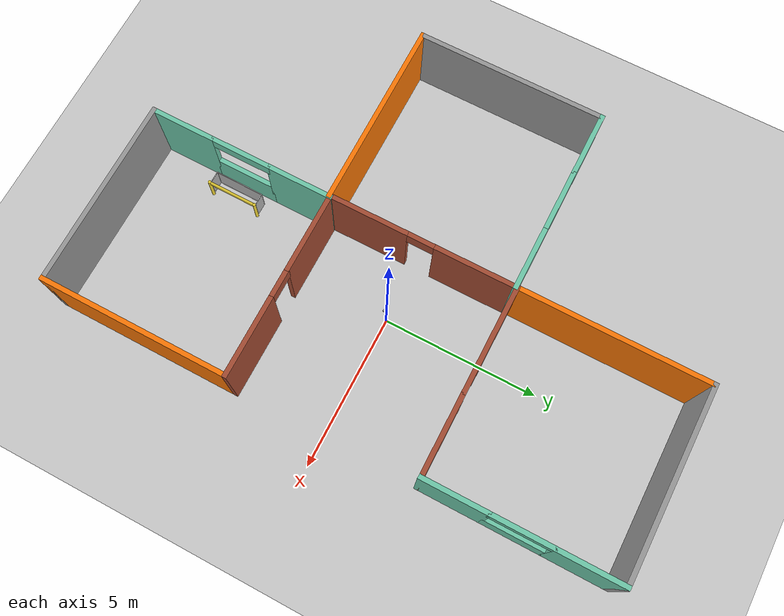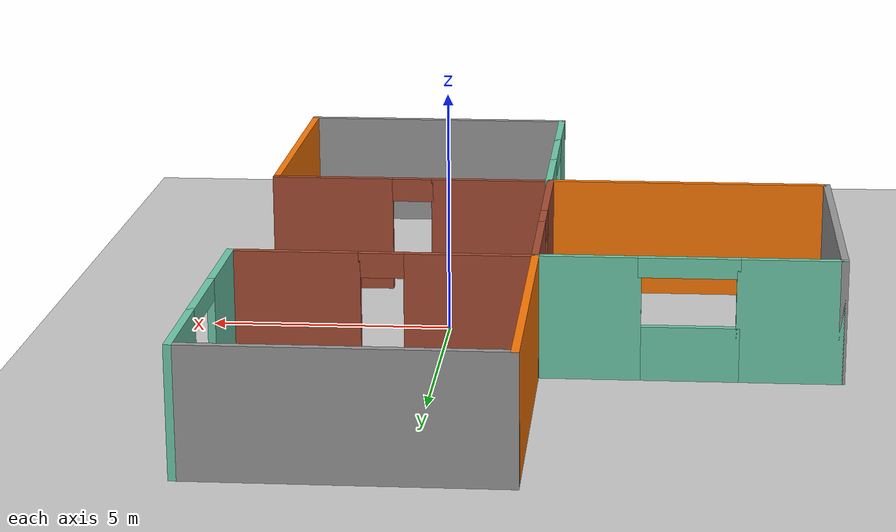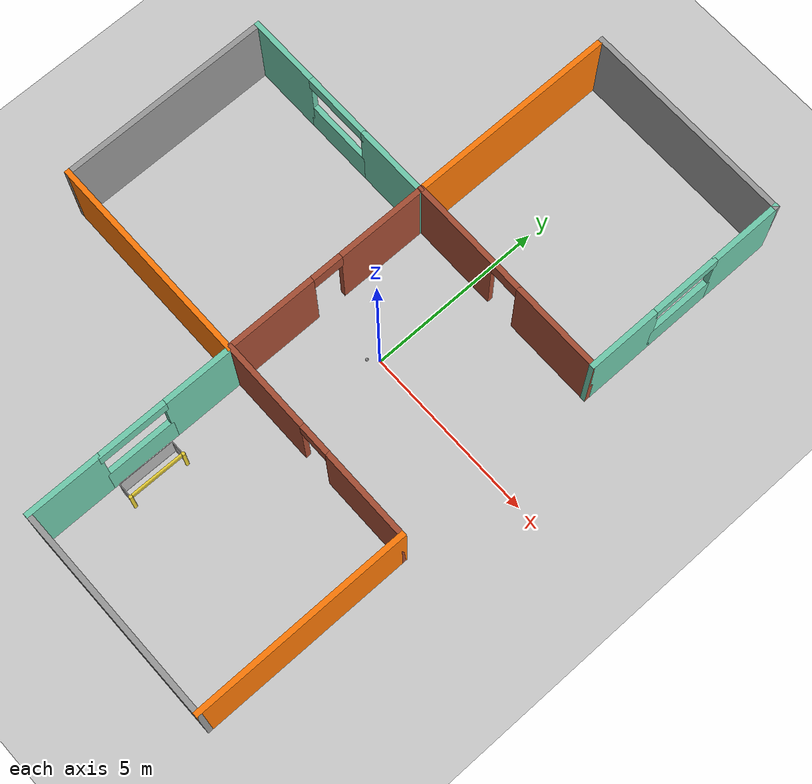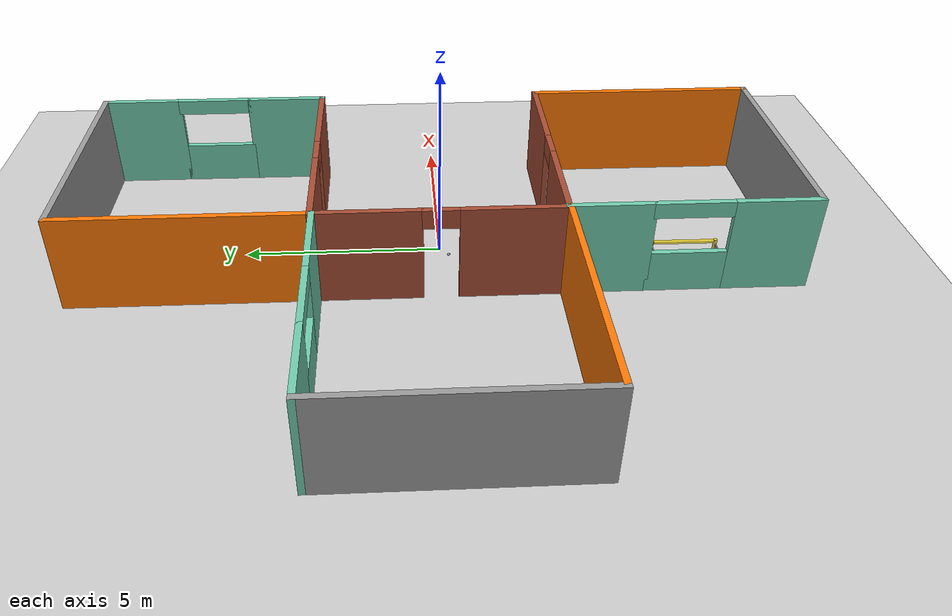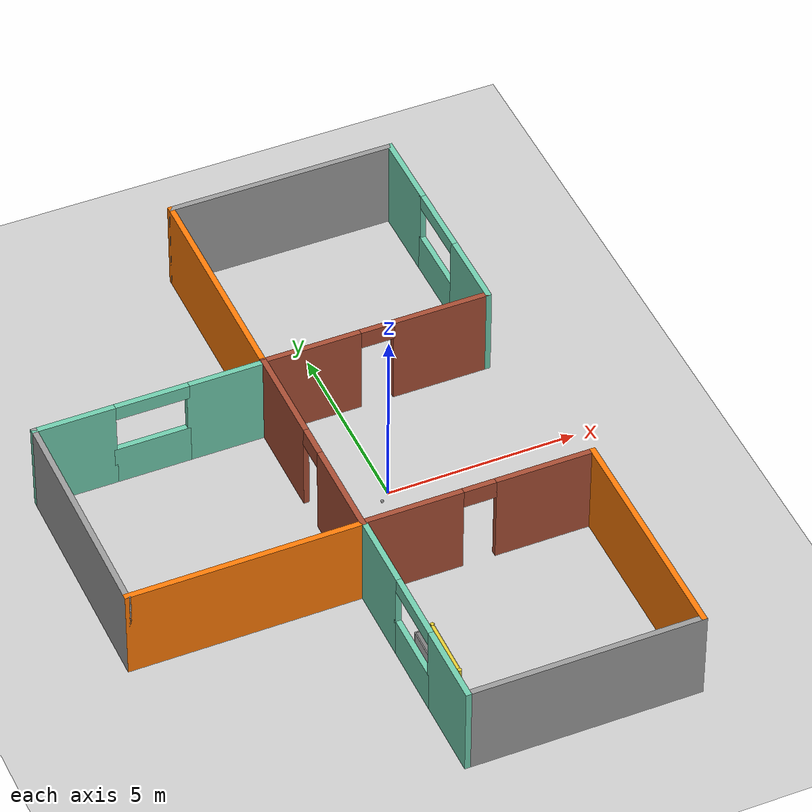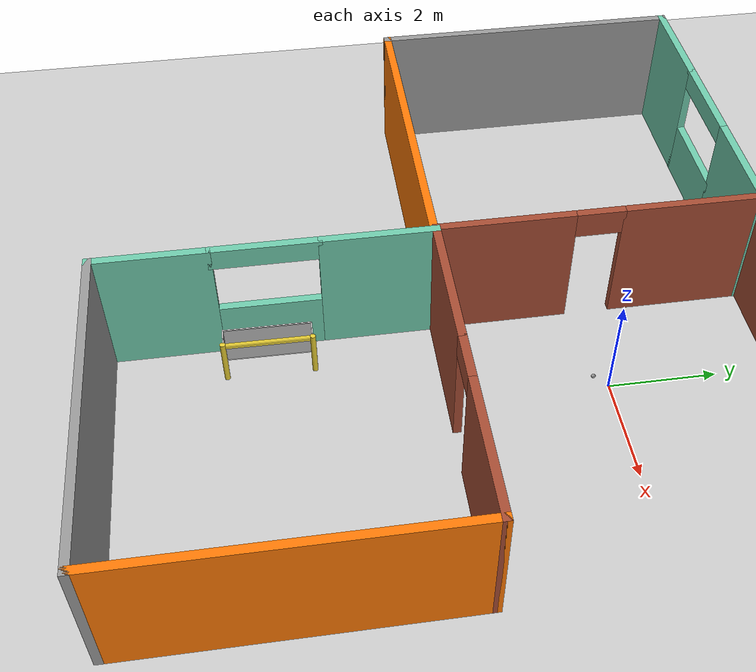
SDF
<sdf version="1.6">
 <world name="default">
  <model name="ground_plane">
   <static>1</static>
   <link name="link">
    <collision name="collision">
     <geometry><plane><normal>0 0 1</normal><size>100 100</size></plane></geometry>
     <surface><friction><ode><mu>100</mu><mu2>50</mu2></ode></friction></surface>
    </collision>
    <visual name="visual">
     <cast_shadows>0</cast_shadows>
     <geometry><plane><normal>0 0 1</normal><size>100 100</size></plane></geometry>
     <material>
      <script><uri>file://media/materials/scripts/gazebo.material</uri><name>Gazebo/Grey</name></script>
     </material>
    </visual>
   </link>
  </model>
  <model name="basic-building">
   <pose>-4.95619 0.066142 0 0 -0 0</pose>
   <link name="Wall_0">
    <pose>0 3 0 0 -0 0</pose>
    <visual name="Wall_0_Visual_0">
     <pose>-2 0 1.25 0 -0 0</pose>
     <geometry><box><size>2.15 0.15 2.5</size></box></geometry>
     <material>
      <script><uri>file://media/materials/scripts/gazebo.material</uri><name>Gazebo/Grey</name></script>
      <ambient>0.435294 0.796078 0.67451 1</ambient>
     </material>
     <meta><layer>0</layer></meta>
    </visual>
    <collision name="Wall_0_Collision_0">
     <pose>-2 0 1.25 0 -0 0</pose>
     <geometry><box><size>2.15 0.15 2.5</size></box></geometry>
    </collision>
    <visual name="Wall_0_Visual_1">
     <pose>2 0 1.25 0 -0 0</pose>
     <geometry><box><size>2.15 0.15 2.5</size></box></geometry>
     <material>
      <script><uri>file://media/materials/scripts/gazebo.material</uri><name>Gazebo/Grey</name></script>
      <ambient>0.435294 0.796078 0.67451 1</ambient>
     </material>
     <meta><layer>0</layer></meta>
    </visual>
    <collision name="Wall_0_Collision_1">
     <pose>2 0 1.25 0 -0 0</pose>
     <geometry><box><size>2.15 0.15 2.5</size></box></geometry>
    </collision>
    <visual name="Wall_0_Visual_2">
     <pose>0 0 0.55 0 -0 0</pose>
     <geometry><box><size>2 0.15 1.1</size></box></geometry>
     <material>
      <script><uri>file://media/materials/scripts/gazebo.material</uri><name>Gazebo/Grey</name></script>
      <ambient>0.435294 0.796078 0.67451 1</ambient>
     </material>
     <meta><layer>0</layer></meta>
    </visual>
    <collision name="Wall_0_Collision_2">
     <pose>0 0 0.55 0 -0 0</pose>
     <geometry><box><size>2 0.15 1.1</size></box></geometry>
    </collision>
    <visual name="Wall_0_Visual_3">
     <pose>0 0 2.3 0 -0 0</pose>
     <geometry><box><size>2 0.15 0.4</size></box></geometry>
     <material>
      <script><uri>file://media/materials/scripts/gazebo.material</uri><name>Gazebo/Grey</name></script>
      <ambient>0.435294 0.796078 0.67451 1</ambient>
     </material>
     <meta><layer>0</layer></meta>
    </visual>
    <collision name="Wall_0_Collision_3">
     <pose>0 0 2.3 0 -0 0</pose>
     <geometry><box><size>2 0.15 0.4</size></box></geometry>
    </collision>
   </link>
   <link name="Wall_1">
    <pose>-3 0 0 0 0 -1.5708</pose>
    <collision name="Wall_1_Collision">
     <pose>0 0 3 0 -0 0</pose>
     <geometry><box><size>6.15 0.15 2.5</size></box></geometry>
    </collision>
    <visual name="Wall_1_Visual">
     <pose>0 0 1.25 0 -0 0</pose>
     <geometry><box><size>6.15 0.15 2.5</size></box></geometry>
     <material>
      <script><uri>file://media/materials/scripts/gazebo.material</uri><name>Gazebo/Grey</name></script>
      <ambient>1 1 1 1</ambient>
     </material>
     <meta><layer>0</layer></meta>
    </visual>
   </link>
   <link name="Wall_2">
    <pose>0 -3 0 0 -0 0</pose>
    <collision name="Wall_2_Collision">
     <pose>0 0 1.25 0 -0 0</pose>
     <geometry><box><size>6.15 0.15 2.5</size></box></geometry>
    </collision>
    <visual name="Wall_2_Visual">
     <pose>0 0 1.25 0 -0 0</pose>
     <geometry><box><size>6.15 0.15 2.5</size></box></geometry>
     <material>
      <script><uri>file://media/materials/scripts/gazebo.material</uri><name>Gazebo/Grey</name></script>
      <ambient>0.996078 0.47451 0.0196078 1</ambient>
     </material>
     <meta><layer>0</layer></meta>
    </visual>
   </link>
   <link name="Wall_3">
    <pose>3 0 0 0 -0 1.5708</pose>
    <visual name="Wall_3_Visual_0">
     <pose>-1.75 0 1.25 0 -0 0</pose>
     <geometry><box><size>2.65 0.15 2.5</size></box></geometry>
     <material>
      <script><uri>file://media/materials/scripts/gazebo.material</uri><name>Gazebo/Bricks</name></script>
      <ambient>1 1 1 1</ambient>
     </material>
     <meta><layer>0</layer></meta>
    </visual>
    <collision name="Wall_3_Collision_0">
     <pose>-1.75 0 1.25 0 -0 0</pose>
     <geometry><box><size>2.65 0.15 2.5</size></box></geometry>
    </collision>
    <visual name="Wall_3_Visual_1">
     <pose>1.75 0 1.25 0 -0 0</pose>
     <geometry><box><size>2.65 0.15 2.5</size></box></geometry>
     <material>
      <script><uri>file://media/materials/scripts/gazebo.material</uri><name>Gazebo/Bricks</name></script>
      <ambient>1 1 1 1</ambient>
     </material>
     <meta><layer>0</layer></meta>
    </visual>
    <collision name="Wall_3_Collision_1">
     <pose>1.75 0 1.25 0 -0 0</pose>
     <geometry><box><size>2.65 0.15 2.5</size></box></geometry>
    </collision>
    <visual name="Wall_3_Visual_2">
     <pose>0.015 0 2.25 0 -0 0</pose>
     <geometry><box><size>0.9 0.15 0.5</size></box></geometry>
     <material>
      <script><uri>file://media/materials/scripts/gazebo.material</uri><name>Gazebo/Bricks</name></script>
      <ambient>1 1 1 1</ambient>
     </material>
     <meta><layer>0</layer></meta>
    </visual>
    <collision name="Wall_3_Collision_2">
     <geometry><box><size>0.9 0.15 0.5</size></box></geometry>
     <pose>0.015 0 2.25 0 -0 0</pose>
    </collision>
   </link>
   <static>1</static>
  </model>
  <model name="basic-building_0">
   <pose>1.06911 -5.90415 0 0 -0 1.56871</pose>
   <link name="Wall_0">
    <pose>0 3 0 0 -0 0</pose>
    <visual name="Wall_0_Visual_0">
     <pose>-2 0 1.25 0 -0 0</pose>
     <geometry><box><size>2.15 0.15 2.5</size></box></geometry>
     <material>
      <script><uri>file://media/materials/scripts/gazebo.material</uri><name>Gazebo/Grey</name></script>
      <ambient>0.435294 0.796078 0.67451 1</ambient>
     </material>
     <meta><layer>0</layer></meta>
    </visual>
    <collision name="Wall_0_Collision_0">
     <pose>-2 0 1.25 0 -0 0</pose>
     <geometry><box><size>2.15 0.15 2.5</size></box></geometry>
    </collision>
    <visual name="Wall_0_Visual_1">
     <pose>2 0 1.25 0 -0 0</pose>
     <geometry><box><size>2.15 0.15 2.5</size></box></geometry>
     <material>
      <script><uri>file://media/materials/scripts/gazebo.material</uri><name>Gazebo/Grey</name></script>
      <ambient>0.435294 0.796078 0.67451 1</ambient>
     </material>
     <meta><layer>0</layer></meta>
    </visual>
    <collision name="Wall_0_Collision_1">
     <pose>2 0 1.25 0 -0 0</pose>
     <geometry><box><size>2.15 0.15 2.5</size></box></geometry>
    </collision>
    <visual name="Wall_0_Visual_2">
     <pose>0 0 0.55 0 -0 0</pose>
     <geometry><box><size>2 0.15 1.1</size></box></geometry>
     <material>
      <script><uri>file://media/materials/scripts/gazebo.material</uri><name>Gazebo/Grey</name></script>
      <ambient>0.435294 0.796078 0.67451 1</ambient>
     </material>
     <meta><layer>0</layer></meta>
    </visual>
    <collision name="Wall_0_Collision_2">
     <pose>0 0 0.55 0 -0 0</pose>
     <geometry><box><size>2 0.15 1.1</size></box></geometry>
    </collision>
    <visual name="Wall_0_Visual_3">
     <pose>0 0 2.3 0 -0 0</pose>
     <geometry><box><size>2 0.15 0.4</size></box></geometry>
     <material>
      <script><uri>file://media/materials/scripts/gazebo.material</uri><name>Gazebo/Grey</name></script>
      <ambient>0.435294 0.796078 0.67451 1</ambient>
     </material>
     <meta><layer>0</layer></meta>
    </visual>
    <collision name="Wall_0_Collision_3">
     <pose>0 0 2.3 0 -0 0</pose>
     <geometry><box><size>2 0.15 0.4</size></box></geometry>
    </collision>
   </link>
   <link name="Wall_1">
    <pose>-3 0 0 0 0 -1.5708</pose>
    <collision name="Wall_1_Collision">
     <pose>0 0 3 0 -0 0</pose>
     <geometry><box><size>6.15 0.15 2.5</size></box></geometry>
    </collision>
    <visual name="Wall_1_Visual">
     <pose>0 0 1.25 0 -0 0</pose>
     <geometry><box><size>6.15 0.15 2.5</size></box></geometry>
     <material>
      <script><uri>file://media/materials/scripts/gazebo.material</uri><name>Gazebo/Grey</name></script>
      <ambient>1 1 1 1</ambient>
     </material>
     <meta><layer>0</layer></meta>
    </visual>
   </link>
   <link name="Wall_2">
    <pose>0 -3 0 0 -0 0</pose>
    <collision name="Wall_2_Collision">
     <pose>0 0 1.25 0 -0 0</pose>
     <geometry><box><size>6.15 0.15 2.5</size></box></geometry>
    </collision>
    <visual name="Wall_2_Visual">
     <pose>0 0 1.25 0 -0 0</pose>
     <geometry><box><size>6.15 0.15 2.5</size></box></geometry>
     <material>
      <script><uri>file://media/materials/scripts/gazebo.material</uri><name>Gazebo/Grey</name></script>
      <ambient>0.996078 0.47451 0.0196078 1</ambient>
     </material>
     <meta><layer>0</layer></meta>
    </visual>
   </link>
   <link name="Wall_3">
    <pose>3 0 0 0 -0 1.5708</pose>
    <visual name="Wall_3_Visual_0">
     <pose>-1.75 0 1.25 0 -0 0</pose>
     <geometry><box><size>2.65 0.15 2.5</size></box></geometry>
     <material>
      <script><uri>file://media/materials/scripts/gazebo.material</uri><name>Gazebo/Bricks</name></script>
      <ambient>1 1 1 1</ambient>
     </material>
     <meta><layer>0</layer></meta>
    </visual>
    <collision name="Wall_3_Collision_0">
     <pose>-1.75 0 1.25 0 -0 0</pose>
     <geometry><box><size>2.65 0.15 2.5</size></box></geometry>
    </collision>
    <visual name="Wall_3_Visual_1">
     <pose>1.75 0 1.25 0 -0 0</pose>
     <geometry><box><size>2.65 0.15 2.5</size></box></geometry>
     <material>
      <script><uri>file://media/materials/scripts/gazebo.material</uri><name>Gazebo/Bricks</name></script>
      <ambient>1 1 1 1</ambient>
     </material>
     <meta><layer>0</layer></meta>
    </visual>
    <collision name="Wall_3_Collision_1">
     <pose>1.75 0 1.25 0 -0 0</pose>
     <geometry><box><size>2.65 0.15 2.5</size></box></geometry>
    </collision>
    <visual name="Wall_3_Visual_2">
     <pose>0.015 0 2.25 0 -0 0</pose>
     <geometry><box><size>0.9 0.15 0.5</size></box></geometry>
     <material>
      <script><uri>file://media/materials/scripts/gazebo.material</uri><name>Gazebo/Bricks</name></script>
      <ambient>1 1 1 1</ambient>
     </material>
     <meta><layer>0</layer></meta>
    </visual>
    <collision name="Wall_3_Collision_2">
     <geometry><box><size>0.9 0.15 0.5</size></box></geometry>
     <pose>0.015 0 2.25 0 -0 0</pose>
    </collision>
   </link>
   <static>1</static>
  </model>
  <model name="basic-building_1">
   <pose>1.04098 6.10578 0 0 0 -1.57217</pose>
   <link name="Wall_0">
    <pose>0 3 0 0 -0 0</pose>
    <visual name="Wall_0_Visual_0">
     <pose>-2 0 1.25 0 -0 0</pose>
     <geometry><box><size>2.15 0.15 2.5</size></box></geometry>
     <material>
      <script><uri>file://media/materials/scripts/gazebo.material</uri><name>Gazebo/Grey</name></script>
      <ambient>0.435294 0.796078 0.67451 1</ambient>
     </material>
     <meta><layer>0</layer></meta>
    </visual>
    <collision name="Wall_0_Collision_0">
     <pose>-2 0 1.25 0 -0 0</pose>
     <geometry><box><size>2.15 0.15 2.5</size></box></geometry>
    </collision>
    <visual name="Wall_0_Visual_1">
     <pose>2 0 1.25 0 -0 0</pose>
     <geometry><box><size>2.15 0.15 2.5</size></box></geometry>
     <material>
      <script><uri>file://media/materials/scripts/gazebo.material</uri><name>Gazebo/Grey</name></script>
      <ambient>0.435294 0.796078 0.67451 1</ambient>
     </material>
     <meta><layer>0</layer></meta>
    </visual>
    <collision name="Wall_0_Collision_1">
     <pose>2 0 1.25 0 -0 0</pose>
     <geometry><box><size>2.15 0.15 2.5</size></box></geometry>
    </collision>
    <visual name="Wall_0_Visual_2">
     <pose>0 0 0.55 0 -0 0</pose>
     <geometry><box><size>2 0.15 1.1</size></box></geometry>
     <material>
      <script><uri>file://media/materials/scripts/gazebo.material</uri><name>Gazebo/Grey</name></script>
      <ambient>0.435294 0.796078 0.67451 1</ambient>
     </material>
     <meta><layer>0</layer></meta>
    </visual>
    <collision name="Wall_0_Collision_2">
     <pose>0 0 0.55 0 -0 0</pose>
     <geometry><box><size>2 0.15 1.1</size></box></geometry>
    </collision>
    <visual name="Wall_0_Visual_3">
     <pose>0 0 2.3 0 -0 0</pose>
     <geometry><box><size>2 0.15 0.4</size></box></geometry>
     <material>
      <script><uri>file://media/materials/scripts/gazebo.material</uri><name>Gazebo/Grey</name></script>
      <ambient>0.435294 0.796078 0.67451 1</ambient>
     </material>
     <meta><layer>0</layer></meta>
    </visual>
    <collision name="Wall_0_Collision_3">
     <pose>0 0 2.3 0 -0 0</pose>
     <geometry><box><size>2 0.15 0.4</size></box></geometry>
    </collision>
   </link>
   <link name="Wall_1">
    <pose>-3 0 0 0 0 -1.5708</pose>
    <collision name="Wall_1_Collision">
     <pose>0 0 3 0 -0 0</pose>
     <geometry><box><size>6.15 0.15 2.5</size></box></geometry>
    </collision>
    <visual name="Wall_1_Visual">
     <pose>0 0 1.25 0 -0 0</pose>
     <geometry><box><size>6.15 0.15 2.5</size></box></geometry>
     <material>
      <script><uri>file://media/materials/scripts/gazebo.material</uri><name>Gazebo/Grey</name></script>
      <ambient>1 1 1 1</ambient>
     </material>
     <meta><layer>0</layer></meta>
    </visual>
   </link>
   <link name="Wall_2">
    <pose>0 -3 0 0 -0 0</pose>
    <collision name="Wall_2_Collision">
     <pose>0 0 1.25 0 -0 0</pose>
     <geometry><box><size>6.15 0.15 2.5</size></box></geometry>
    </collision>
    <visual name="Wall_2_Visual">
     <pose>0 0 1.25 0 -0 0</pose>
     <geometry><box><size>6.15 0.15 2.5</size></box></geometry>
     <material>
      <script><uri>file://media/materials/scripts/gazebo.material</uri><name>Gazebo/Grey</name></script>
      <ambient>0.996078 0.47451 0.0196078 1</ambient>
     </material>
     <meta><layer>0</layer></meta>
    </visual>
   </link>
   <link name="Wall_3">
    <pose>3 0 0 0 -0 1.5708</pose>
    <visual name="Wall_3_Visual_0">
     <pose>-1.75 0 1.25 0 -0 0</pose>
     <geometry><box><size>2.65 0.15 2.5</size></box></geometry>
     <material>
      <script><uri>file://media/materials/scripts/gazebo.material</uri><name>Gazebo/Bricks</name></script>
      <ambient>1 1 1 1</ambient>
     </material>
     <meta><layer>0</layer></meta>
    </visual>
    <collision name="Wall_3_Collision_0">
     <pose>-1.75 0 1.25 0 -0 0</pose>
     <geometry><box><size>2.65 0.15 2.5</size></box></geometry>
    </collision>
    <visual name="Wall_3_Visual_1">
     <pose>1.75 0 1.25 0 -0 0</pose>
     <geometry><box><size>2.65 0.15 2.5</size></box></geometry>
     <material>
      <script><uri>file://media/materials/scripts/gazebo.material</uri><name>Gazebo/Bricks</name></script>
      <ambient>1 1 1 1</ambient>
     </material>
     <meta><layer>0</layer></meta>
    </visual>
    <collision name="Wall_3_Collision_1">
     <pose>1.75 0 1.25 0 -0 0</pose>
     <geometry><box><size>2.65 0.15 2.5</size></box></geometry>
    </collision>
    <visual name="Wall_3_Visual_2">
     <pose>0.015 0 2.25 0 -0 0</pose>
     <geometry><box><size>0.9 0.15 0.5</size></box></geometry>
     <material>
      <script><uri>file://media/materials/scripts/gazebo.material</uri><name>Gazebo/Bricks</name></script>
      <ambient>1 1 1 1</ambient>
     </material>
     <meta><layer>0</layer></meta>
    </visual>
    <collision name="Wall_3_Collision_2">
     <geometry><box><size>0.9 0.15 0.5</size></box></geometry>
     <pose>0.015 0 2.25 0 -0 0</pose>
    </collision>
   </link>
   <static>1</static>
  </model>
  <model name="RoboCup 2014 SPL Goal_0">
   <static>1</static>
   <link name="left_post">
    <pose>0 0.8 0.45 0 -0 0</pose>
    <collision name="collision">
     <geometry><cylinder><radius>0.05</radius><length>0.9</length></cylinder></geometry>
    </collision>
    <visual name="visual">
     <geometry><cylinder><radius>0.05</radius><length>0.9</length></cylinder></geometry>
     <material>
      <script><uri>file://media/materials/scripts/gazebo.material</uri><name>Gazebo/ZincYellow</name></script>
     </material>
    </visual>
   </link>
   <link name="left_support_horiz_lower">
    <pose>0.24 0.8 0.01 0 -0 0</pose>
    <collision name="collision"><geometry><box><size>0.38 0.02 0.02</size></box></geometry></collision>
    <visual name="visual">
     <geometry><box><size>0.38 0.02 0.02</size></box></geometry>
     <material>
      <script><uri>file://media/materials/scripts/gazebo.material</uri><name>Gazebo/White</name></script>
     </material>
    </visual>
   </link>
   <link name="left_support_horiz_upper">
    <pose>0.24 0.8 0.79 0 -0 0</pose>
    <collision name="collision"><geometry><box><size>0.38 0.02 0.02</size></box></geometry></collision>
    <visual name="visual">
     <geometry><box><size>0.38 0.02 0.02</size></box></geometry>
     <material>
      <script><uri>file://media/materials/scripts/gazebo.material</uri><name>Gazebo/White</name></script>
     </material>
    </visual>
   </link>
   <link name="left_support_vertical">
    <pose>0.44 0.8 0.4 3.14159 1.57079 3.14159</pose>
    <collision name="collision"><geometry><box><size>0.8 0.02 0.02</size></box></geometry></collision>
    <visual name="visual">
     <geometry><box><size>0.8 0.02 0.02</size></box></geometry>
     <material>
      <script><uri>file://media/materials/scripts/gazebo.material</uri><name>Gazebo/White</name></script>
     </material>
    </visual>
   </link>
   <link name="right_support_horiz_lower">
    <pose>0.24 -0.8 0.01 0 -0 0</pose>
    <collision name="collision"><geometry><box><size>0.38 0.02 0.02</size></box></geometry></collision>
    <visual name="visual">
     <geometry><box><size>0.38 0.02 0.02</size></box></geometry>
     <material>
      <script><uri>file://media/materials/scripts/gazebo.material</uri><name>Gazebo/White</name></script>
     </material>
    </visual>
   </link>
   <link name="right_support_horiz_upper">
    <pose>0.24 -0.8 0.79 0 -0 0</pose>
    <collision name="collision"><geometry><box><size>0.38 0.02 0.02</size></box></geometry></collision>
    <visual name="visual">
     <geometry><box><size>0.38 0.02 0.02</size></box></geometry>
     <material>
      <script><uri>file://media/materials/scripts/gazebo.material</uri><name>Gazebo/White</name></script>
     </material>
    </visual>
   </link>
   <link name="right_support_vertical">
    <pose>0.44 -0.8 0.4 3.14159 1.57079 3.14159</pose>
    <collision name="collision"><geometry><box><size>0.8 0.02 0.02</size></box></geometry></collision>
    <visual name="visual">
     <geometry><box><size>0.8 0.02 0.02</size></box></geometry>
     <material>
      <script><uri>file://media/materials/scripts/gazebo.material</uri><name>Gazebo/White</name></script>
     </material>
    </visual>
   </link>
   <link name="center_support_horiz_lower">
    <pose>0.44 0 0.01 3.14159 1.57079 3.14159</pose>
    <collision name="collision"><geometry><box><size>0.02 1.58 0.02</size></box></geometry></collision>
    <visual name="visual">
     <geometry><box><size>0.02 1.58 0.02</size></box></geometry>
     <material>
      <script><uri>file://media/materials/scripts/gazebo.material</uri><name>Gazebo/White</name></script>
     </material>
    </visual>
   </link>
   <link name="center_support_horiz_upper">
    <pose>0.44 0 0.79 3.14159 1.57079 3.14159</pose>
    <collision name="collision"><geometry><box><size>0.02 1.58 0.02</size></box></geometry></collision>
    <visual name="visual">
     <geometry><box><size>0.02 1.58 0.02</size></box></geometry>
     <material>
      <script><uri>file://media/materials/scripts/gazebo.material</uri><name>Gazebo/White</name></script>
     </material>
    </visual>
   </link>
   <link name="right_post">
    <pose>0 -0.8 0.45 0 -0 0</pose>
    <collision name="collision">
     <geometry><cylinder><radius>0.05</radius><length>0.9</length></cylinder></geometry>
    </collision>
    <visual name="visual">
     <geometry><cylinder><radius>0.05</radius><length>0.9</length></cylinder></geometry>
     <material>
      <script><uri>file://media/materials/scripts/gazebo.material</uri><name>Gazebo/ZincYellow</name></script>
     </material>
    </visual>
   </link>
   <link name="crossbar">
    <pose>0 0 0.85 1.57 1.57 0</pose>
    <collision name="collision">
     <geometry><cylinder><radius>0.05</radius><length>1.5</length></cylinder></geometry>
    </collision>
    <visual name="visual">
     <geometry><cylinder><radius>0.05</radius><length>1.5</length></cylinder></geometry>
     <material>
      <script><uri>file://media/materials/scripts/gazebo.material</uri><name>Gazebo/ZincYellow</name></script>
     </material>
    </visual>
   </link>
   <link name="center_net">
    <pose>0.44 0 0.4 0 -0 0</pose>
    <collision name="collision"><geometry><box><size>0.01 1.6 0.8</size></box></geometry></collision>
    <visual name="visual">
     <geometry><box><size>0.01 1.6 0.8</size></box></geometry>
     <material>
      <script>
       <uri>model://robocup09_spl_field/materials/scripts/</uri>
       <uri>model://robocup09_spl_field/materials/textures/</uri>
       <name>RoboCup/Net</name>
      </script>
     </material>
    </visual>
   </link>
   <link name="left_net">
    <pose>0.24 0.8 0.4 0 -0 0</pose>
    <collision name="collision"><geometry><box><size>0.38 0.01 0.76</size></box></geometry></collision>
    <visual name="visual">
     <geometry><box><size>0.38 0.01 0.76</size></box></geometry>
     <material>
      <script>
       <uri>model://robocup09_spl_field/materials/scripts/</uri>
       <uri>model://robocup09_spl_field/materials/textures/</uri>
       <name>RoboCup/Net</name>
      </script>
     </material>
    </visual>
   </link>
   <link name="right_net">
    <pose>0.24 -0.8 0.4 0 -0 0</pose>
    <collision name="collision"><geometry><box><size>0.38 0.01 0.76</size></box></geometry></collision>
    <visual name="visual">
     <geometry><box><size>0.38 0.01 0.76</size></box></geometry>
     <material>
      <script>
       <uri>model://robocup09_spl_field/materials/scripts/</uri>
       <uri>model://robocup09_spl_field/materials/textures/</uri>
       <name>RoboCup/Net</name>
      </script>
     </material>
    </visual>
   </link>
   <pose>-1.17183 -6.01482 0 0 -0 3.13143</pose>
  </model>
  <model name="my_ball">
   <link name="link_0">
    <inertial>
     <mass>1</mass>
     <inertia><ixx>0.1</ixx><ixy>0</ixy><ixz>0</ixz><iyy>0.1</iyy><iyz>0</iyz><izz>0.1</izz></inertia>
    </inertial>
    <visual name="visual">
     <geometry><sphere><radius>0.04</radius></sphere></geometry>
     <material>
      <lighting>1</lighting>
      <script><uri>file://media/materials/scripts/gazebo.material</uri><name>Gazebo/Grey</name></script>
      <shader type="pixel"><normal_map>__default__</normal_map></shader>
      <ambient>1 1 1 1</ambient>
      <diffuse>1 1 1 1</diffuse>
      <specular>1 1 1 1</specular>
      <emissive>1 1 1 1</emissive>
     </material>
    </visual>
    <collision name="collision">
     <geometry><sphere><radius>0.04</radius></sphere></geometry>
     <surface>
      <friction>
       <ode><mu>1</mu><mu2>1</mu2><fdir1>0 0 0</fdir1><slip1>0</slip1><slip2>0</slip2></ode>
       <torsional>
        <coefficient>1</coefficient>
        <patch_radius>0</patch_radius>
        <surface_radius>0</surface_radius>
        <use_patch_radius>1</use_patch_radius>
        <ode><slip>0</slip></ode>
       </torsional>
      </friction>
      <bounce><restitution_coefficient>0</restitution_coefficient><threshold>1e+06</threshold></bounce>
      <contact>
       <collide_without_contact>0</collide_without_contact>
       <collide_without_contact_bitmask>1</collide_without_contact_bitmask>
       <collide_bitmask>1</collide_bitmask>
       <ode>
        <soft_cfm>0</soft_cfm>
        <soft_erp>0.2</soft_erp>
        <kp>1e+13</kp>
        <kd>1</kd>
        <max_vel>0.01</max_vel>
        <min_depth>0</min_depth>
       </ode>
       <bullet>
        <split_impulse>1</split_impulse>
        <split_impulse_penetration_threshold>-0.01</split_impulse_penetration_threshold>
        <soft_cfm>0</soft_cfm>
        <soft_erp>0.2</soft_erp>
        <kp>1e+13</kp>
        <kd>1</kd>
       </bullet>
      </contact>
     </surface>
    </collision>
   </link>
   <static>0</static>
   <pose>-0.254916 -0.21867 0.02 -0.00141 -0.00141 1e-06</pose>
  </model>
 </world>
</sdf>
